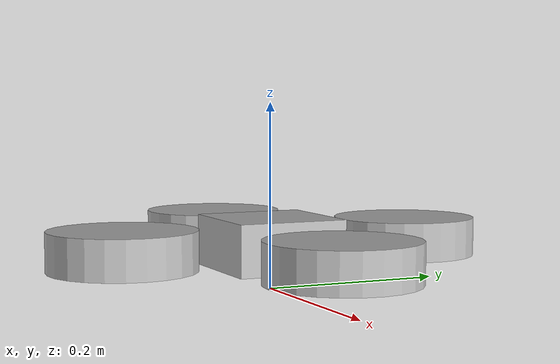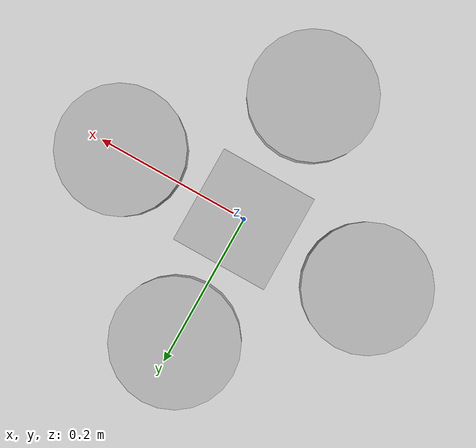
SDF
<?xml version="1.0" ?>
<sdf version="1.6">
  <model name="evolved_sentinel_prime_v4">
    <static>false</static>
    <link name="base_link">
      <pose>0 0 0.05 0 0 0</pose>
      <inertial>
        <mass>0.8200</mass>
        <inertia>
          <ixx>0.010202</ixx>
          <ixy>0</ixy>
          <ixz>0</ixz>
          <iyy>0.010202</iyy>
          <iyz>0</iyz>
          <izz>0.014801</izz>
        </inertia>
      </inertial>
      <visual name="body_visual">
        <geometry>
          <box><size>0.12 0.12 0.055</size></box>
        </geometry>
      </visual>
      <collision name="body_collision">
        <geometry>
          <box><size>0.12 0.12 0.055</size></box>
        </geometry>
      </collision>
      <sensor name="lidar_360" type="ray">
        <pose>0 0 0.05 0 0 0</pose>
        <ray>
          <scan>
            <horizontal>
              <samples>360</samples>
              <resolution>1</resolution>
              <min_angle>-3.14159</min_angle>
              <max_angle>3.14159</max_angle>
            </horizontal>
          </scan>
          <range>
            <min>0.08</min>
            <max>12.0</max>
          </range>
        </ray>
      </sensor>
    </link>

    <link name="arm_1">
      <pose>0.1650 0.0000 0.05 0 0 0</pose>
      <collision name="duct_bumper_1_collision">
        <geometry>
          <cylinder>
            <radius>0.0780</radius>
            <length>0.0420</length>
          </cylinder>
        </geometry>
      </collision>
      <visual name="duct_bumper_1_visual">
        <geometry>
          <cylinder>
            <radius>0.0780</radius>
            <length>0.0420</length>
          </cylinder>
        </geometry>
      </visual>
    </link>
    <joint name="joint_arm_1" type="fixed">
      <parent>base_link</parent>
      <child>arm_1</child>
    </joint>

    <link name="arm_2">
      <pose>0.0000 0.1650 0.05 0 0 0</pose>
      <collision name="duct_bumper_2_collision">
        <geometry>
          <cylinder>
            <radius>0.0780</radius>
            <length>0.0420</length>
          </cylinder>
        </geometry>
      </collision>
      <visual name="duct_bumper_2_visual">
        <geometry>
          <cylinder>
            <radius>0.0780</radius>
            <length>0.0420</length>
          </cylinder>
        </geometry>
      </visual>
    </link>
    <joint name="joint_arm_2" type="fixed">
      <parent>base_link</parent>
      <child>arm_2</child>
    </joint>

    <link name="arm_3">
      <pose>-0.1650 0.0000 0.05 0 0 0</pose>
      <collision name="duct_bumper_3_collision">
        <geometry>
          <cylinder>
            <radius>0.0780</radius>
            <length>0.0420</length>
          </cylinder>
        </geometry>
      </collision>
      <visual name="duct_bumper_3_visual">
        <geometry>
          <cylinder>
            <radius>0.0780</radius>
            <length>0.0420</length>
          </cylinder>
        </geometry>
      </visual>
    </link>
    <joint name="joint_arm_3" type="fixed">
      <parent>base_link</parent>
      <child>arm_3</child>
    </joint>

    <link name="arm_4">
      <pose>-0.0000 -0.1650 0.05 0 0 0</pose>
      <collision name="duct_bumper_4_collision">
        <geometry>
          <cylinder>
            <radius>0.0780</radius>
            <length>0.0420</length>
          </cylinder>
        </geometry>
      </collision>
      <visual name="duct_bumper_4_visual">
        <geometry>
          <cylinder>
            <radius>0.0780</radius>
            <length>0.0420</length>
          </cylinder>
        </geometry>
      </visual>
    </link>
    <joint name="joint_arm_4" type="fixed">
      <parent>base_link</parent>
      <child>arm_4</child>
    </joint>

    <plugin name="px4_multirotor_dynamics" filename="libgazebo_multirotor_dynamics_plugin.so">
      <robotNamespace>evolved_sentinel_prime_v4</robotNamespace>
      <autonomousPolicyActive>true</autonomousPolicyActive>
      <bumperThicknessMm>2.5</bumperThicknessMm>
    </plugin>
  </model>
</sdf>
